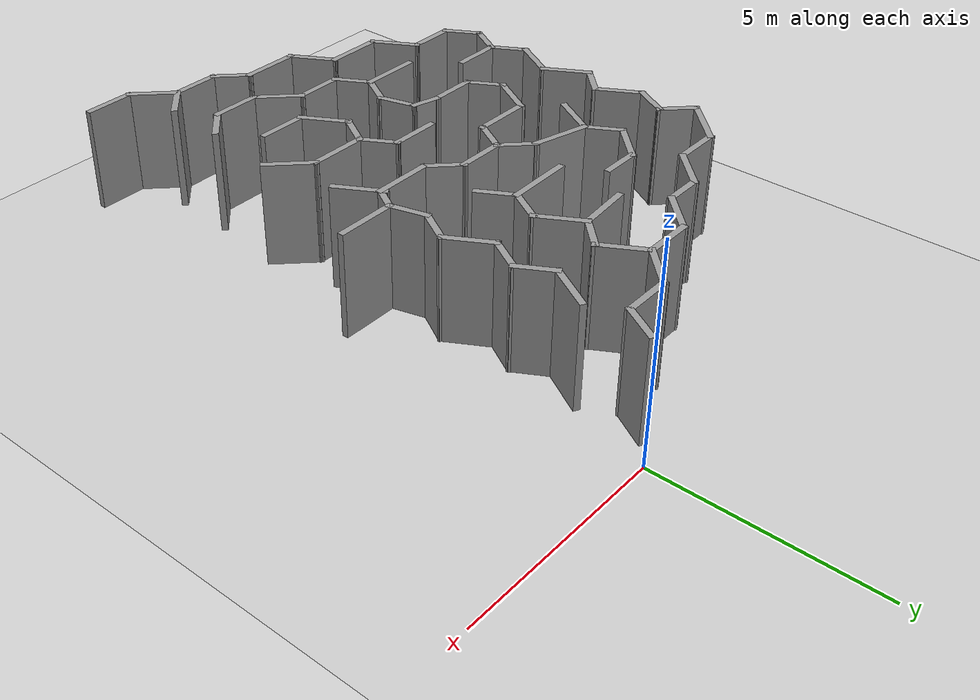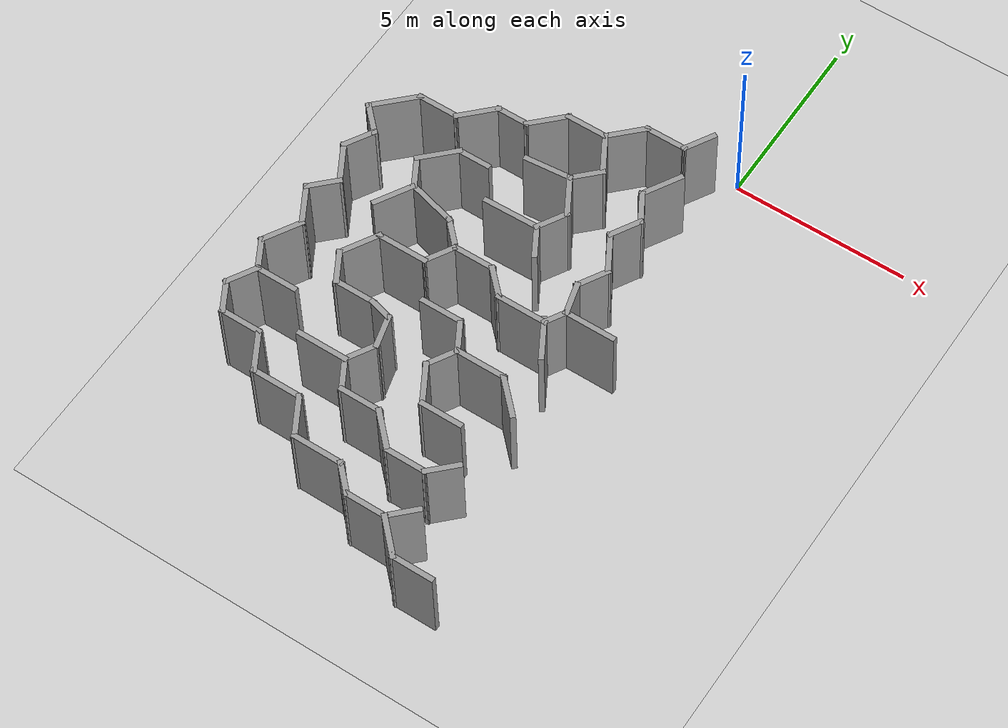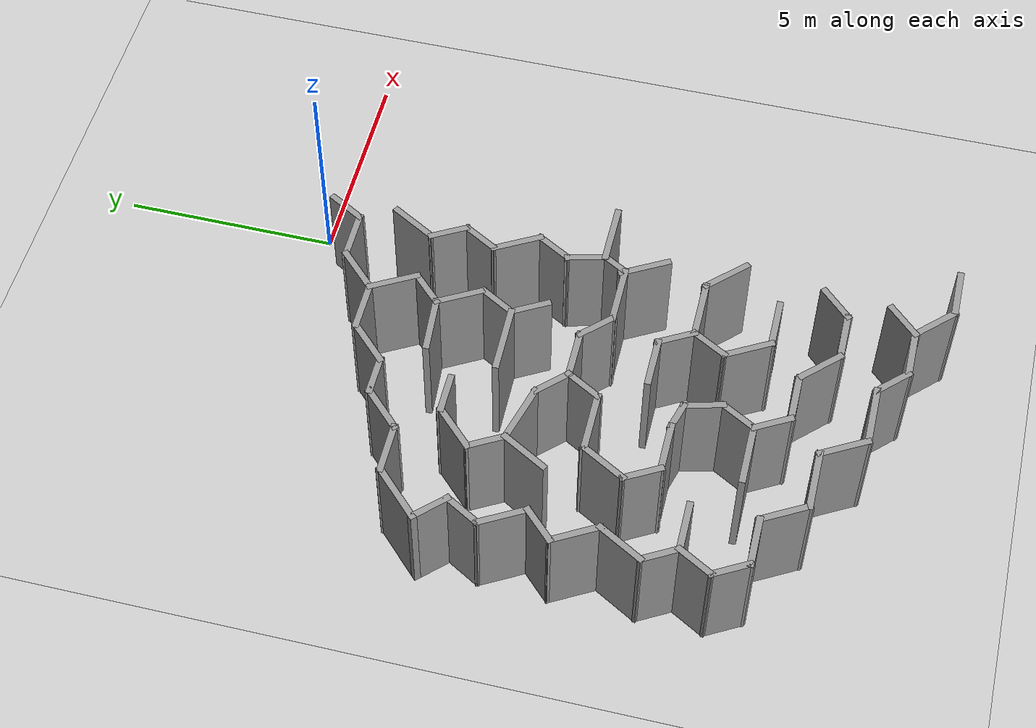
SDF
<sdf version="1.7">
 <world name="default">
  <model name="ground_plane">
   <static>1</static>
   <link name="link">
    <collision name="collision">
     <geometry><plane><normal>0 0 1</normal><size>100 100</size></plane></geometry>
     <surface><friction><ode><mu>100</mu><mu2>50</mu2></ode></friction></surface>
    </collision>
    <visual name="visual">
     <cast_shadows>0</cast_shadows>
     <geometry><plane><normal>0 0 1</normal><size>100 100</size></plane></geometry>
     <material>
      <script><uri>file://media/materials/scripts/gazebo.material</uri><name>Gazebo/Grey</name></script>
     </material>
    </visual>
   </link>
  </model>
  <model name="Maze">
   <pose>0.084887 -7.59379 0 0 -0 0</pose>
   <link name="Wall_1">
    <collision name="Wall_1_Collision">
     <geometry><box><size>1 0.15 2.5</size></box></geometry>
     <pose>0 0 1.25 0 -0 0</pose>
    </collision>
    <visual name="Wall_1_Visual">
     <pose>0 0 1.25 0 -0 0</pose>
     <geometry><box><size>1 0.15 2.5</size></box></geometry>
     <material>
      <script><uri>file://media/materials/scripts/gazebo.material</uri><name>Gazebo/Grey</name></script>
      <ambient>1 1 1 1</ambient>
     </material>
     <meta><layer>0</layer></meta>
    </visual>
    <pose>-0.837603 6.79011 0 0 -0 -2.0944</pose>
   </link>
   <link name="Wall_10">
    <collision name="Wall_10_Collision">
     <geometry><box><size>1 0.15 2.5</size></box></geometry>
     <pose>0 0 1.25 0 -0 0</pose>
    </collision>
    <visual name="Wall_10_Visual">
     <pose>0 0 1.25 0 -0 0</pose>
     <geometry><box><size>1 0.15 2.5</size></box></geometry>
     <material>
      <script><uri>file://media/materials/scripts/gazebo.material</uri><name>Gazebo/Grey</name></script>
      <ambient>1 1 1 1</ambient>
     </material>
     <meta><layer>0</layer></meta>
    </visual>
    <pose>-8.18763 2.83349 0 0 -0 -0.785398</pose>
   </link>
   <link name="Wall_100">
    <collision name="Wall_100_Collision">
     <geometry><box><size>0.75 0.15 2.5</size></box></geometry>
     <pose>0 0 1.25 0 -0 0</pose>
    </collision>
    <visual name="Wall_100_Visual">
     <pose>0 0 1.25 0 -0 0</pose>
     <geometry><box><size>0.75 0.15 2.5</size></box></geometry>
     <material>
      <script><uri>file://media/materials/scripts/gazebo.material</uri><name>Gazebo/Grey</name></script>
      <ambient>1 1 1 1</ambient>
     </material>
     <meta><layer>0</layer></meta>
    </visual>
    <pose>-4.7111 -1.71873 0 0 -0 -0.261799</pose>
   </link>
   <link name="Wall_101">
    <collision name="Wall_101_Collision">
     <geometry><box><size>1 0.15 2.5</size></box></geometry>
     <pose>0 0 1.25 0 -0 0</pose>
    </collision>
    <visual name="Wall_101_Visual">
     <pose>0 0 1.25 0 -0 0</pose>
     <geometry><box><size>1 0.15 2.5</size></box></geometry>
     <material>
      <script><uri>file://media/materials/scripts/gazebo.material</uri><name>Gazebo/Grey</name></script>
      <ambient>1 1 1 1</ambient>
     </material>
     <meta><layer>0</layer></meta>
    </visual>
    <pose>-4.31133 -2.20689 0 0 -0 -1.309</pose>
   </link>
   <link name="Wall_102">
    <collision name="Wall_102_Collision">
     <geometry><box><size>1 0.15 2.5</size></box></geometry>
     <pose>0 0 1.25 0 -0 0</pose>
    </collision>
    <visual name="Wall_102_Visual">
     <pose>0 0 1.25 0 -0 0</pose>
     <geometry><box><size>1 0.15 2.5</size></box></geometry>
     <material>
      <script><uri>file://media/materials/scripts/gazebo.material</uri><name>Gazebo/Grey</name></script>
      <ambient>1 1 1 1</ambient>
     </material>
     <meta><layer>0</layer></meta>
    </visual>
    <pose>-4.41383 -2.98547 0 0 -0 -2.0944</pose>
   </link>
   <link name="Wall_103">
    <collision name="Wall_103_Collision">
     <geometry><box><size>1.5 0.15 2.5</size></box></geometry>
     <pose>0 0 1.25 0 -0 0</pose>
    </collision>
    <visual name="Wall_103_Visual">
     <pose>0 0 1.25 0 -0 0</pose>
     <geometry><box><size>1.5 0.15 2.5</size></box></geometry>
     <material>
      <script><uri>file://media/materials/scripts/gazebo.material</uri><name>Gazebo/Grey</name></script>
      <ambient>1 1 1 1</ambient>
     </material>
     <meta><layer>0</layer></meta>
    </visual>
    <pose>-5.30133 -3.35353 0 0 -0 3.14159</pose>
   </link>
   <link name="Wall_105">
    <collision name="Wall_105_Collision">
     <geometry><box><size>1 0.15 2.5</size></box></geometry>
     <pose>0 0 1.25 0 -0 0</pose>
    </collision>
    <visual name="Wall_105_Visual">
     <pose>0 0 1.25 0 -0 0</pose>
     <geometry><box><size>1 0.15 2.5</size></box></geometry>
     <material>
      <script><uri>file://media/materials/scripts/gazebo.material</uri><name>Gazebo/Grey</name></script>
      <ambient>1 1 1 1</ambient>
     </material>
     <meta><layer>0</layer></meta>
    </visual>
    <pose>-4.41383 -3.72159 0 0 -0 -1.0472</pose>
   </link>
   <link name="Wall_106">
    <collision name="Wall_106_Collision">
     <geometry><box><size>1.25 0.15 2.5</size></box></geometry>
     <pose>0 0 1.25 0 -0 0</pose>
    </collision>
    <visual name="Wall_106_Visual">
     <pose>0 0 1.25 0 -0 0</pose>
     <geometry><box><size>1.25 0.15 2.5</size></box></geometry>
     <material>
      <script><uri>file://media/materials/scripts/gazebo.material</uri><name>Gazebo/Grey</name></script>
      <ambient>1 1 1 1</ambient>
     </material>
     <meta><layer>0</layer></meta>
    </visual>
    <pose>-3.65133 -4.08965 0 0 -0 0</pose>
   </link>
   <link name="Wall_107">
    <collision name="Wall_107_Collision">
     <geometry><box><size>1.25 0.15 2.5</size></box></geometry>
     <pose>0 0 1.25 0 -0 0</pose>
    </collision>
    <visual name="Wall_107_Visual">
     <pose>0 0 1.25 0 -0 0</pose>
     <geometry><box><size>1.25 0.15 2.5</size></box></geometry>
     <material>
      <script><uri>file://media/materials/scripts/gazebo.material</uri><name>Gazebo/Grey</name></script>
      <ambient>1 1 1 1</ambient>
     </material>
     <meta><layer>0</layer></meta>
    </visual>
    <pose>-2.71242 -4.47856 0 0 -0 -0.785398</pose>
   </link>
   <link name="Wall_108">
    <collision name="Wall_108_Collision">
     <geometry><box><size>1.25 0.15 2.5</size></box></geometry>
     <pose>0 0 1.25 0 -0 0</pose>
    </collision>
    <visual name="Wall_108_Visual">
     <pose>0 0 1.25 0 -0 0</pose>
     <geometry><box><size>1.25 0.15 2.5</size></box></geometry>
     <material>
      <script><uri>file://media/materials/scripts/gazebo.material</uri><name>Gazebo/Grey</name></script>
      <ambient>1 1 1 1</ambient>
     </material>
     <meta><layer>0</layer></meta>
    </visual>
    <pose>-1.77351 -4.86747 0 0 -0 0</pose>
   </link>
   <link name="Wall_109">
    <collision name="Wall_109_Collision">
     <geometry><box><size>1 0.15 2.5</size></box></geometry>
     <pose>0 0 1.25 0 -0 0</pose>
    </collision>
    <visual name="Wall_109_Visual">
     <pose>0 0 1.25 0 -0 0</pose>
     <geometry><box><size>1 0.15 2.5</size></box></geometry>
     <material>
      <script><uri>file://media/materials/scripts/gazebo.material</uri><name>Gazebo/Grey</name></script>
      <ambient>1 1 1 1</ambient>
     </material>
     <meta><layer>0</layer></meta>
    </visual>
    <pose>-0.92299 -4.56695 0 0 -0 0.785398</pose>
   </link>
   <link name="Wall_11">
    <collision name="Wall_11_Collision">
     <geometry><box><size>1 0.15 2.5</size></box></geometry>
     <pose>0 0 1.25 0 -0 0</pose>
    </collision>
    <visual name="Wall_11_Visual">
     <pose>0 0 1.25 0 -0 0</pose>
     <geometry><box><size>1 0.15 2.5</size></box></geometry>
     <material>
      <script><uri>file://media/materials/scripts/gazebo.material</uri><name>Gazebo/Grey</name></script>
      <ambient>1 1 1 1</ambient>
     </material>
     <meta><layer>0</layer></meta>
    </visual>
    <pose>-8.09961 2.1649 0 0 -0 -2.0944</pose>
   </link>
   <link name="Wall_12">
    <collision name="Wall_12_Collision">
     <geometry><box><size>1.25 0.15 2.5</size></box></geometry>
     <pose>0 0 1.25 0 -0 0</pose>
    </collision>
    <visual name="Wall_12_Visual">
     <pose>0 0 1.25 0 -0 0</pose>
     <geometry><box><size>1.25 0.15 2.5</size></box></geometry>
     <material>
      <script><uri>file://media/materials/scripts/gazebo.material</uri><name>Gazebo/Grey</name></script>
      <ambient>1 1 1 1</ambient>
     </material>
     <meta><layer>0</layer></meta>
    </visual>
    <pose>-8.03711 1.32053 0 0 -0 -1.0472</pose>
   </link>
   <link name="Wall_13">
    <collision name="Wall_13_Collision">
     <geometry><box><size>1 0.15 2.5</size></box></geometry>
     <pose>0 0 1.25 0 -0 0</pose>
    </collision>
    <visual name="Wall_13_Visual">
     <pose>0 0 1.25 0 -0 0</pose>
     <geometry><box><size>1 0.15 2.5</size></box></geometry>
     <material>
      <script><uri>file://media/materials/scripts/gazebo.material</uri><name>Gazebo/Grey</name></script>
      <ambient>1 1 1 1</ambient>
     </material>
     <meta><layer>0</layer></meta>
    </visual>
    <pose>-8.06263 0.543695 0 0 -0 -2.35619</pose>
   </link>
   <link name="Wall_14">
    <collision name="Wall_14_Collision">
     <geometry><box><size>1.25 0.15 2.5</size></box></geometry>
     <pose>0 0 1.25 0 -0 0</pose>
    </collision>
    <visual name="Wall_14_Visual">
     <pose>0 0 1.25 0 -0 0</pose>
     <geometry><box><size>1.25 0.15 2.5</size></box></geometry>
     <material>
      <script><uri>file://media/materials/scripts/gazebo.material</uri><name>Gazebo/Grey</name></script>
      <ambient>1 1 1 1</ambient>
     </material>
     <meta><layer>0</layer></meta>
    </visual>
    <pose>-8.08815 -0.233139 0 0 -0 -1.0472</pose>
   </link>
   <link name="Wall_15">
    <collision name="Wall_15_Collision">
     <geometry><box><size>1.25 0.15 2.5</size></box></geometry>
     <pose>0 0 1.25 0 -0 0</pose>
    </collision>
    <visual name="Wall_15_Visual">
     <pose>0 0 1.25 0 -0 0</pose>
     <geometry><box><size>1.25 0.15 2.5</size></box></geometry>
     <material>
      <script><uri>file://media/materials/scripts/gazebo.material</uri><name>Gazebo/Grey</name></script>
      <ambient>1 1 1 1</ambient>
     </material>
     <meta><layer>0</layer></meta>
    </visual>
    <pose>-8.08815 -1.18577 0 0 -0 -2.0944</pose>
   </link>
   <link name="Wall_150">
    <collision name="Wall_150_Collision">
     <geometry><box><size>1.25 0.15 2.5</size></box></geometry>
     <pose>0 0 1.25 0 -0 0</pose>
    </collision>
    <visual name="Wall_150_Visual">
     <pose>0 0 1.25 0 -0 0</pose>
     <geometry><box><size>1.25 0.15 2.5</size></box></geometry>
     <material>
      <script><uri>file://media/materials/scripts/gazebo.material</uri><name>Gazebo/Grey</name></script>
      <ambient>1 1 1 1</ambient>
     </material>
     <meta><layer>0</layer></meta>
    </visual>
    <pose>-0.725983 -2.0513 0 0 -0 2.35619</pose>
   </link>
   <link name="Wall_151">
    <collision name="Wall_151_Collision">
     <geometry><box><size>1.5 0.15 2.5</size></box></geometry>
     <pose>0 0 1.25 0 -0 0</pose>
    </collision>
    <visual name="Wall_151_Visual">
     <pose>0 0 1.25 0 -0 0</pose>
     <geometry><box><size>1.5 0.15 2.5</size></box></geometry>
     <material>
      <script><uri>file://media/materials/scripts/gazebo.material</uri><name>Gazebo/Grey</name></script>
      <ambient>1 1 1 1</ambient>
     </material>
     <meta><layer>0</layer></meta>
    </visual>
    <pose>-1.78989 -1.66239 0 0 -0 3.14159</pose>
   </link>
   <link name="Wall_152">
    <collision name="Wall_152_Collision">
     <geometry><box><size>1 0.15 2.5</size></box></geometry>
     <pose>0 0 1.25 0 -0 0</pose>
    </collision>
    <visual name="Wall_152_Visual">
     <pose>0 0 1.25 0 -0 0</pose>
     <geometry><box><size>1 0.15 2.5</size></box></geometry>
     <material>
      <script><uri>file://media/materials/scripts/gazebo.material</uri><name>Gazebo/Grey</name></script>
      <ambient>1 1 1 1</ambient>
     </material>
     <meta><layer>0</layer></meta>
    </visual>
    <pose>-2.67739 -1.29433 0 0 -0 2.0944</pose>
   </link>
   <link name="Wall_153">
    <collision name="Wall_153_Collision">
     <geometry><box><size>1.25 0.15 2.5</size></box></geometry>
     <pose>0 0 1.25 0 -0 0</pose>
    </collision>
    <visual name="Wall_153_Visual">
     <pose>0 0 1.25 0 -0 0</pose>
     <geometry><box><size>1.25 0.15 2.5</size></box></geometry>
     <material>
      <script><uri>file://media/materials/scripts/gazebo.material</uri><name>Gazebo/Grey</name></script>
      <ambient>1 1 1 1</ambient>
     </material>
     <meta><layer>0</layer></meta>
    </visual>
    <pose>-3.43989 -0.926265 0 0 -0 3.14159</pose>
   </link>
   <link name="Wall_155">
    <collision name="Wall_155_Collision">
     <geometry><box><size>1 0.15 2.5</size></box></geometry>
     <pose>0 0 1.25 0 -0 0</pose>
    </collision>
    <visual name="Wall_155_Visual">
     <pose>0 0 1.25 0 -0 0</pose>
     <geometry><box><size>1 0.15 2.5</size></box></geometry>
     <material>
      <script><uri>file://media/materials/scripts/gazebo.material</uri><name>Gazebo/Grey</name></script>
      <ambient>1 1 1 1</ambient>
     </material>
     <meta><layer>0</layer></meta>
    </visual>
    <pose>-2.67739 -2.03045 0 0 -0 -2.0944</pose>
   </link>
   <link name="Wall_156">
    <collision name="Wall_156_Collision">
     <geometry><box><size>1.25 0.15 2.5</size></box></geometry>
     <pose>0 0 1.25 0 -0 0</pose>
    </collision>
    <visual name="Wall_156_Visual">
     <pose>0 0 1.25 0 -0 0</pose>
     <geometry><box><size>1.25 0.15 2.5</size></box></geometry>
     <material>
      <script><uri>file://media/materials/scripts/gazebo.material</uri><name>Gazebo/Grey</name></script>
      <ambient>1 1 1 1</ambient>
     </material>
     <meta><layer>0</layer></meta>
    </visual>
    <pose>-2.61489 -2.87482 0 0 -0 -1.0472</pose>
   </link>
   <link name="Wall_157">
    <collision name="Wall_157_Collision">
     <geometry><box><size>1.25 0.15 2.5</size></box></geometry>
     <pose>0 0 1.25 0 -0 0</pose>
    </collision>
    <visual name="Wall_157_Visual">
     <pose>0 0 1.25 0 -0 0</pose>
     <geometry><box><size>1.25 0.15 2.5</size></box></geometry>
     <material>
      <script><uri>file://media/materials/scripts/gazebo.material</uri><name>Gazebo/Grey</name></script>
      <ambient>1 1 1 1</ambient>
     </material>
     <meta><layer>0</layer></meta>
    </visual>
    <pose>-1.78989 -3.35114 0 0 -0 0</pose>
   </link>
   <link name="Wall_16">
    <collision name="Wall_16_Collision">
     <geometry><box><size>1 0.15 2.5</size></box></geometry>
     <pose>0 0 1.25 0 -0 0</pose>
    </collision>
    <visual name="Wall_16_Visual">
     <pose>0 0 1.25 0 -0 0</pose>
     <geometry><box><size>1 0.15 2.5</size></box></geometry>
     <material>
      <script><uri>file://media/materials/scripts/gazebo.material</uri><name>Gazebo/Grey</name></script>
      <ambient>1 1 1 1</ambient>
     </material>
     <meta><layer>0</layer></meta>
    </visual>
    <pose>-8.15065 -2.03014 0 0 -0 -1.0472</pose>
   </link>
   <link name="Wall_17">
    <collision name="Wall_17_Collision">
     <geometry><box><size>1.25 0.15 2.5</size></box></geometry>
     <pose>0 0 1.25 0 -0 0</pose>
    </collision>
    <visual name="Wall_17_Visual">
     <pose>0 0 1.25 0 -0 0</pose>
     <geometry><box><size>1.25 0.15 2.5</size></box></geometry>
     <material>
      <script><uri>file://media/materials/scripts/gazebo.material</uri><name>Gazebo/Grey</name></script>
      <ambient>1 1 1 1</ambient>
     </material>
     <meta><layer>0</layer></meta>
    </visual>
    <pose>-7.38815 -2.3982 0 0 -0 0</pose>
   </link>
   <link name="Wall_172">
    <collision name="Wall_172_Collision">
     <geometry><box><size>1.25 0.15 2.5</size></box></geometry>
     <pose>0 0 1.25 0 -0 0</pose>
    </collision>
    <visual name="Wall_172_Visual">
     <pose>0 0 1.25 0 -0 0</pose>
     <geometry><box><size>1.25 0.15 2.5</size></box></geometry>
     <material>
      <script><uri>file://media/materials/scripts/gazebo.material</uri><name>Gazebo/Grey</name></script>
      <ambient>1 1 1 1</ambient>
     </material>
     <meta><layer>0</layer></meta>
    </visual>
    <pose>-0.93069 -0.221655 0 0 -0 -1.0472</pose>
   </link>
   <link name="Wall_174">
    <collision name="Wall_174_Collision">
     <geometry><box><size>1.5 0.15 2.5</size></box></geometry>
     <pose>0 0 1.25 0 -0 0</pose>
    </collision>
    <visual name="Wall_174_Visual">
     <pose>0 0 1.25 0 -0 0</pose>
     <geometry><box><size>1.5 0.15 2.5</size></box></geometry>
     <material>
      <script><uri>file://media/materials/scripts/gazebo.material</uri><name>Gazebo/Grey</name></script>
      <ambient>1 1 1 1</ambient>
     </material>
     <meta><layer>0</layer></meta>
    </visual>
    <pose>-0.174839 0.702363 0 0 -0 0</pose>
   </link>
   <link name="Wall_19">
    <collision name="Wall_19_Collision">
     <geometry><box><size>1 0.15 2.5</size></box></geometry>
     <pose>0 0 1.25 0 -0 0</pose>
    </collision>
    <visual name="Wall_19_Visual">
     <pose>0 0 1.25 0 -0 0</pose>
     <geometry><box><size>1 0.15 2.5</size></box></geometry>
     <material>
      <script><uri>file://media/materials/scripts/gazebo.material</uri><name>Gazebo/Grey</name></script>
      <ambient>1 1 1 1</ambient>
     </material>
     <meta><layer>0</layer></meta>
    </visual>
    <pose>-8.15065 -2.76626 0 0 -0 -2.0944</pose>
   </link>
   <link name="Wall_2">
    <collision name="Wall_2_Collision">
     <geometry><box><size>1.25 0.15 2.5</size></box></geometry>
     <pose>0 0 1.25 0 -0 0</pose>
    </collision>
    <visual name="Wall_2_Visual">
     <pose>0 0 1.25 0 -0 0</pose>
     <geometry><box><size>1.25 0.15 2.5</size></box></geometry>
     <material>
      <script><uri>file://media/materials/scripts/gazebo.material</uri><name>Gazebo/Grey</name></script>
      <ambient>1 1 1 1</ambient>
     </material>
     <meta><layer>0</layer></meta>
    </visual>
    <pose>-1.6001 6.42205 0 0 -0 3.14159</pose>
   </link>
   <link name="Wall_20">
    <collision name="Wall_20_Collision">
     <geometry><box><size>1 0.15 2.5</size></box></geometry>
     <pose>0 0 1.25 0 -0 0</pose>
    </collision>
    <visual name="Wall_20_Visual">
     <pose>0 0 1.25 0 -0 0</pose>
     <geometry><box><size>1 0.15 2.5</size></box></geometry>
     <material>
      <script><uri>file://media/materials/scripts/gazebo.material</uri><name>Gazebo/Grey</name></script>
      <ambient>1 1 1 1</ambient>
     </material>
     <meta><layer>0</layer></meta>
    </visual>
    <pose>-8.15065 -3.50238 0 0 -0 -1.0472</pose>
   </link>
   <link name="Wall_21">
    <collision name="Wall_21_Collision">
     <geometry><box><size>1.25 0.15 2.5</size></box></geometry>
     <pose>0 0 1.25 0 -0 0</pose>
    </collision>
    <visual name="Wall_21_Visual">
     <pose>0 0 1.25 0 -0 0</pose>
     <geometry><box><size>1.25 0.15 2.5</size></box></geometry>
     <material>
      <script><uri>file://media/materials/scripts/gazebo.material</uri><name>Gazebo/Grey</name></script>
      <ambient>1 1 1 1</ambient>
     </material>
     <meta><layer>0</layer></meta>
    </visual>
    <pose>-7.38815 -3.87045 0 0 -0 0</pose>
   </link>
   <link name="Wall_22">
    <collision name="Wall_22_Collision">
     <geometry><box><size>1.25 0.15 2.5</size></box></geometry>
     <pose>0 0 1.25 0 -0 0</pose>
    </collision>
    <visual name="Wall_22_Visual">
     <pose>0 0 1.25 0 -0 0</pose>
     <geometry><box><size>1.25 0.15 2.5</size></box></geometry>
     <material>
      <script><uri>file://media/materials/scripts/gazebo.material</uri><name>Gazebo/Grey</name></script>
      <ambient>1 1 1 1</ambient>
     </material>
     <meta><layer>0</layer></meta>
    </visual>
    <pose>-6.56315 -4.34676 0 0 -0 -1.0472</pose>
   </link>
   <link name="Wall_23">
    <collision name="Wall_23_Collision">
     <geometry><box><size>1.5 0.15 2.5</size></box></geometry>
     <pose>0 0 1.25 0 -0 0</pose>
    </collision>
    <visual name="Wall_23_Visual">
     <pose>0 0 1.25 0 -0 0</pose>
     <geometry><box><size>1.5 0.15 2.5</size></box></geometry>
     <material>
      <script><uri>file://media/materials/scripts/gazebo.material</uri><name>Gazebo/Grey</name></script>
      <ambient>1 1 1 1</ambient>
     </material>
     <meta><layer>0</layer></meta>
    </visual>
    <pose>-5.61315 -4.82307 0 0 -0 0</pose>
   </link>
   <link name="Wall_24">
    <collision name="Wall_24_Collision">
     <geometry><box><size>1.25 0.15 2.5</size></box></geometry>
     <pose>0 0 1.25 0 -0 0</pose>
    </collision>
    <visual name="Wall_24_Visual">
     <pose>0 0 1.25 0 -0 0</pose>
     <geometry><box><size>1.25 0.15 2.5</size></box></geometry>
     <material>
      <script><uri>file://media/materials/scripts/gazebo.material</uri><name>Gazebo/Grey</name></script>
      <ambient>1 1 1 1</ambient>
     </material>
     <meta><layer>0</layer></meta>
    </visual>
    <pose>-4.66315 -5.29939 0 0 -0 -1.0472</pose>
   </link>
   <link name="Wall_25">
    <collision name="Wall_25_Collision">
     <geometry><box><size>1.5 0.15 2.5</size></box></geometry>
     <pose>0 0 1.25 0 -0 0</pose>
    </collision>
    <visual name="Wall_25_Visual">
     <pose>0 0 1.25 0 -0 0</pose>
     <geometry><box><size>1.5 0.15 2.5</size></box></geometry>
     <material>
      <script><uri>file://media/materials/scripts/gazebo.material</uri><name>Gazebo/Grey</name></script>
      <ambient>1 1 1 1</ambient>
     </material>
     <meta><layer>0</layer></meta>
    </visual>
    <pose>-3.71315 -5.7757 0 0 -0 0</pose>
   </link>
   <link name="Wall_26">
    <collision name="Wall_26_Collision">
     <geometry><box><size>1 0.15 2.5</size></box></geometry>
     <pose>0 0 1.25 0 -0 0</pose>
    </collision>
    <visual name="Wall_26_Visual">
     <pose>0 0 1.25 0 -0 0</pose>
     <geometry><box><size>1 0.15 2.5</size></box></geometry>
     <material>
      <script><uri>file://media/materials/scripts/gazebo.material</uri><name>Gazebo/Grey</name></script>
      <ambient>1 1 1 1</ambient>
     </material>
     <meta><layer>0</layer></meta>
    </visual>
    <pose>-2.73763 -6.07622 0 0 -0 -0.785398</pose>
   </link>
   <link name="Wall_27">
    <collision name="Wall_27_Collision">
     <geometry><box><size>1.25 0.15 2.5</size></box></geometry>
     <pose>0 0 1.25 0 -0 0</pose>
    </collision>
    <visual name="Wall_27_Visual">
     <pose>0 0 1.25 0 -0 0</pose>
     <geometry><box><size>1.25 0.15 2.5</size></box></geometry>
     <material>
      <script><uri>file://media/materials/scripts/gazebo.material</uri><name>Gazebo/Grey</name></script>
      <ambient>1 1 1 1</ambient>
     </material>
     <meta><layer>0</layer></meta>
    </visual>
    <pose>-1.88711 -6.37674 0 0 -0 0</pose>
   </link>
   <link name="Wall_28">
    <collision name="Wall_28_Collision">
     <geometry><box><size>1 0.15 2.5</size></box></geometry>
     <pose>0 0 1.25 0 -0 0</pose>
    </collision>
    <visual name="Wall_28_Visual">
     <pose>0 0 1.25 0 -0 0</pose>
     <geometry><box><size>1 0.15 2.5</size></box></geometry>
     <material>
      <script><uri>file://media/materials/scripts/gazebo.material</uri><name>Gazebo/Grey</name></script>
      <ambient>1 1 1 1</ambient>
     </material>
     <meta><layer>0</layer></meta>
    </visual>
    <pose>-1.03659 -6.07622 0 0 -0 0.785398</pose>
   </link>
   <link name="Wall_3">
    <collision name="Wall_3_Collision">
     <geometry><box><size>1.25 0.15 2.5</size></box></geometry>
     <pose>0 0 1.25 0 -0 0</pose>
    </collision>
    <visual name="Wall_3_Visual">
     <pose>0 0 1.25 0 -0 0</pose>
     <geometry><box><size>1.25 0.15 2.5</size></box></geometry>
     <material>
      <script><uri>file://media/materials/scripts/gazebo.material</uri><name>Gazebo/Grey</name></script>
      <ambient>1 1 1 1</ambient>
     </material>
     <meta><layer>0</layer></meta>
    </visual>
    <pose>-2.53901 6.03314 0 0 -0 -2.35619</pose>
   </link>
   <link name="Wall_30">
    <collision name="Wall_30_Collision">
     <geometry><box><size>1.25 0.15 2.5</size></box></geometry>
     <pose>0 0 1.25 0 -0 0</pose>
    </collision>
    <visual name="Wall_30_Visual">
     <pose>0 0 1.25 0 -0 0</pose>
     <geometry><box><size>1.25 0.15 2.5</size></box></geometry>
     <material>
      <script><uri>file://media/materials/scripts/gazebo.material</uri><name>Gazebo/Grey</name></script>
      <ambient>1 1 1 1</ambient>
     </material>
     <meta><layer>0</layer></meta>
    </visual>
    <pose>-0.9482 -6.76565 0 0 -0 -0.785398</pose>
   </link>
   <link name="Wall_31">
    <collision name="Wall_31_Collision">
     <geometry><box><size>1.25 0.15 2.5</size></box></geometry>
     <pose>0 0 1.25 0 -0 0</pose>
    </collision>
    <visual name="Wall_31_Visual">
     <pose>0 0 1.25 0 -0 0</pose>
     <geometry><box><size>1.25 0.15 2.5</size></box></geometry>
     <material>
      <script><uri>file://media/materials/scripts/gazebo.material</uri><name>Gazebo/Grey</name></script>
      <ambient>1 1 1 1</ambient>
     </material>
     <meta><layer>0</layer></meta>
    </visual>
    <pose>-0.009291 -7.15456 0 0 -0 0</pose>
   </link>
   <link name="Wall_4">
    <collision name="Wall_4_Collision">
     <geometry><box><size>1.25 0.15 2.5</size></box></geometry>
     <pose>0 0 1.25 0 -0 0</pose>
    </collision>
    <visual name="Wall_4_Visual">
     <pose>0 0 1.25 0 -0 0</pose>
     <geometry><box><size>1.25 0.15 2.5</size></box></geometry>
     <material>
      <script><uri>file://media/materials/scripts/gazebo.material</uri><name>Gazebo/Grey</name></script>
      <ambient>1 1 1 1</ambient>
     </material>
     <meta><layer>0</layer></meta>
    </visual>
    <pose>-3.47792 5.64424 0 0 -0 3.14159</pose>
   </link>
   <link name="Wall_5">
    <collision name="Wall_5_Collision">
     <geometry><box><size>1.25 0.15 2.5</size></box></geometry>
     <pose>0 0 1.25 0 -0 0</pose>
    </collision>
    <visual name="Wall_5_Visual">
     <pose>0 0 1.25 0 -0 0</pose>
     <geometry><box><size>1.25 0.15 2.5</size></box></geometry>
     <material>
      <script><uri>file://media/materials/scripts/gazebo.material</uri><name>Gazebo/Grey</name></script>
      <ambient>1 1 1 1</ambient>
     </material>
     <meta><layer>0</layer></meta>
    </visual>
    <pose>-4.41683 5.25533 0 0 -0 -2.35619</pose>
   </link>
   <link name="Wall_6">
    <collision name="Wall_6_Collision">
     <geometry><box><size>1 0.15 2.5</size></box></geometry>
     <pose>0 0 1.25 0 -0 0</pose>
    </collision>
    <visual name="Wall_6_Visual">
     <pose>0 0 1.25 0 -0 0</pose>
     <geometry><box><size>1 0.15 2.5</size></box></geometry>
     <material>
      <script><uri>file://media/materials/scripts/gazebo.material</uri><name>Gazebo/Grey</name></script>
      <ambient>1 1 1 1</ambient>
     </material>
     <meta><layer>0</layer></meta>
    </visual>
    <pose>-5.23074 4.86642 0 0 -0 3.14159</pose>
   </link>
   <link name="Wall_61">
    <collision name="Wall_61_Collision">
     <geometry><box><size>1.25 0.15 2.5</size></box></geometry>
     <pose>0 0 1.25 0 -0 0</pose>
    </collision>
    <visual name="Wall_61_Visual">
     <pose>0 0 1.25 0 -0 0</pose>
     <geometry><box><size>1.25 0.15 2.5</size></box></geometry>
     <material>
      <script><uri>file://media/materials/scripts/gazebo.material</uri><name>Gazebo/Grey</name></script>
      <ambient>1 1 1 1</ambient>
     </material>
     <meta><layer>0</layer></meta>
    </visual>
    <pose>-2.65292 5.16792 0 0 -0 -1.0472</pose>
   </link>
   <link name="Wall_62">
    <collision name="Wall_62_Collision">
     <geometry><box><size>1 0.15 2.5</size></box></geometry>
     <pose>0 0 1.25 0 -0 0</pose>
    </collision>
    <visual name="Wall_62_Visual">
     <pose>0 0 1.25 0 -0 0</pose>
     <geometry><box><size>1 0.15 2.5</size></box></geometry>
     <material>
      <script><uri>file://media/materials/scripts/gazebo.material</uri><name>Gazebo/Grey</name></script>
      <ambient>1 1 1 1</ambient>
     </material>
     <meta><layer>0</layer></meta>
    </visual>
    <pose>-2.67844 4.39109 0 0 -0 -2.35619</pose>
   </link>
   <link name="Wall_63">
    <collision name="Wall_63_Collision">
     <geometry><box><size>1.25 0.15 2.5</size></box></geometry>
     <pose>0 0 1.25 0 -0 0</pose>
    </collision>
    <visual name="Wall_63_Visual">
     <pose>0 0 1.25 0 -0 0</pose>
     <geometry><box><size>1.25 0.15 2.5</size></box></geometry>
     <material>
      <script><uri>file://media/materials/scripts/gazebo.material</uri><name>Gazebo/Grey</name></script>
      <ambient>1 1 1 1</ambient>
     </material>
     <meta><layer>0</layer></meta>
    </visual>
    <pose>-2.70396 3.61425 0 0 -0 -1.0472</pose>
   </link>
   <link name="Wall_64">
    <collision name="Wall_64_Collision">
     <geometry><box><size>1 0.15 2.5</size></box></geometry>
     <pose>0 0 1.25 0 -0 0</pose>
    </collision>
    <visual name="Wall_64_Visual">
     <pose>0 0 1.25 0 -0 0</pose>
     <geometry><box><size>1 0.15 2.5</size></box></geometry>
     <material>
      <script><uri>file://media/materials/scripts/gazebo.material</uri><name>Gazebo/Grey</name></script>
      <ambient>1 1 1 1</ambient>
     </material>
     <meta><layer>0</layer></meta>
    </visual>
    <pose>-2.64146 2.76988 0 0 -0 -2.0944</pose>
   </link>
   <link name="Wall_65">
    <collision name="Wall_65_Collision">
     <geometry><box><size>1 0.15 2.5</size></box></geometry>
     <pose>0 0 1.25 0 -0 0</pose>
    </collision>
    <visual name="Wall_65_Visual">
     <pose>0 0 1.25 0 -0 0</pose>
     <geometry><box><size>1 0.15 2.5</size></box></geometry>
     <material>
      <script><uri>file://media/materials/scripts/gazebo.material</uri><name>Gazebo/Grey</name></script>
      <ambient>1 1 1 1</ambient>
     </material>
     <meta><layer>0</layer></meta>
    </visual>
    <pose>-2.64146 2.03376 0 0 -0 -1.0472</pose>
   </link>
   <link name="Wall_67">
    <collision name="Wall_67_Collision">
     <geometry><box><size>1.6474 0.15 2.5</size></box></geometry>
     <pose>0 0 1.25 0 -0 0</pose>
    </collision>
    <visual name="Wall_67_Visual">
     <pose>0 0 1.25 0 -0 0</pose>
     <geometry><box><size>1.6474 0.15 2.5</size></box></geometry>
     <material>
      <script><uri>file://media/materials/scripts/gazebo.material</uri><name>Gazebo/Grey</name></script>
      <ambient>1 1 1 1</ambient>
     </material>
     <meta><layer>0</layer></meta>
    </visual>
    <pose>-3.60253 2.388 0 0 -0 0.018462</pose>
   </link>
   <link name="Wall_69">
    <collision name="Wall_69_Collision">
     <geometry><box><size>1.38872 0.15 2.5</size></box></geometry>
     <pose>0 0 1.25 0 -0 0</pose>
    </collision>
    <visual name="Wall_69_Visual">
     <pose>0 0 1.25 0 -0 0</pose>
     <geometry><box><size>1.38872 0.15 2.5</size></box></geometry>
     <material>
      <script><uri>file://media/materials/scripts/gazebo.material</uri><name>Gazebo/Grey</name></script>
      <ambient>1 1 1 1</ambient>
     </material>
     <meta><layer>0</layer></meta>
    </visual>
    <pose>-3.59603 4.03737 0 0 -0 0.085995</pose>
   </link>
   <link name="Wall_7">
    <collision name="Wall_7_Collision">
     <geometry><box><size>1.25 0.15 2.5</size></box></geometry>
     <pose>0 0 1.25 0 -0 0</pose>
    </collision>
    <visual name="Wall_7_Visual">
     <pose>0 0 1.25 0 -0 0</pose>
     <geometry><box><size>1.25 0.15 2.5</size></box></geometry>
     <material>
      <script><uri>file://media/materials/scripts/gazebo.material</uri><name>Gazebo/Grey</name></script>
      <ambient>1 1 1 1</ambient>
     </material>
     <meta><layer>0</layer></meta>
    </visual>
    <pose>-6.04465 4.47751 0 0 -0 -2.35619</pose>
   </link>
   <link name="Wall_71">
    <collision name="Wall_71_Collision">
     <geometry><box><size>1 0.15 2.5</size></box></geometry>
     <pose>0 0 1.25 0 -0 0</pose>
    </collision>
    <visual name="Wall_71_Visual">
     <pose>0 0 1.25 0 -0 0</pose>
     <geometry><box><size>1 0.15 2.5</size></box></geometry>
     <material>
      <script><uri>file://media/materials/scripts/gazebo.material</uri><name>Gazebo/Grey</name></script>
      <ambient>1 1 1 1</ambient>
     </material>
     <meta><layer>0</layer></meta>
    </visual>
    <pose>-5.3281 3.24817 0 0 -0 3.14159</pose>
   </link>
   <link name="Wall_72">
    <collision name="Wall_72_Collision">
     <geometry><box><size>1.25 0.15 2.5</size></box></geometry>
     <pose>0 0 1.25 0 -0 0</pose>
    </collision>
    <visual name="Wall_72_Visual">
     <pose>0 0 1.25 0 -0 0</pose>
     <geometry><box><size>1.25 0.15 2.5</size></box></geometry>
     <material>
      <script><uri>file://media/materials/scripts/gazebo.material</uri><name>Gazebo/Grey</name></script>
      <ambient>1 1 1 1</ambient>
     </material>
     <meta><layer>0</layer></meta>
    </visual>
    <pose>-6.14201 2.85927 0 0 -0 -2.35619</pose>
   </link>
   <link name="Wall_73">
    <collision name="Wall_73_Collision">
     <geometry><box><size>1 0.15 2.5</size></box></geometry>
     <pose>0 0 1.25 0 -0 0</pose>
    </collision>
    <visual name="Wall_73_Visual">
     <pose>0 0 1.25 0 -0 0</pose>
     <geometry><box><size>1 0.15 2.5</size></box></geometry>
     <material>
      <script><uri>file://media/materials/scripts/gazebo.material</uri><name>Gazebo/Grey</name></script>
      <ambient>1 1 1 1</ambient>
     </material>
     <meta><layer>0</layer></meta>
    </visual>
    <pose>-6.31842 2.1023 0 0 -0 -1.0472</pose>
   </link>
   <link name="Wall_74">
    <collision name="Wall_74_Collision">
     <geometry><box><size>1.25 0.15 2.5</size></box></geometry>
     <pose>0 0 1.25 0 -0 0</pose>
    </collision>
    <visual name="Wall_74_Visual">
     <pose>0 0 1.25 0 -0 0</pose>
     <geometry><box><size>1.25 0.15 2.5</size></box></geometry>
     <material>
      <script><uri>file://media/materials/scripts/gazebo.material</uri><name>Gazebo/Grey</name></script>
      <ambient>1 1 1 1</ambient>
     </material>
     <meta><layer>0</layer></meta>
    </visual>
    <pose>-6.38092 1.25792 0 0 -0 -2.0944</pose>
   </link>
   <link name="Wall_76">
    <collision name="Wall_76_Collision">
     <geometry><box><size>1.5 0.15 2.5</size></box></geometry>
     <pose>0 0 1.25 0 -0 0</pose>
    </collision>
    <visual name="Wall_76_Visual">
     <pose>0 0 1.25 0 -0 0</pose>
     <geometry><box><size>1.5 0.15 2.5</size></box></geometry>
     <material>
      <script><uri>file://media/materials/scripts/gazebo.material</uri><name>Gazebo/Grey</name></script>
      <ambient>1 1 1 1</ambient>
     </material>
     <meta><layer>0</layer></meta>
    </visual>
    <pose>-5.45392 1.55953 0 0 -0 -0.261799</pose>
   </link>
   <link name="Wall_77">
    <collision name="Wall_77_Collision">
     <geometry><box><size>1 0.15 2.5</size></box></geometry>
     <pose>0 0 1.25 0 -0 0</pose>
    </collision>
    <visual name="Wall_77_Visual">
     <pose>0 0 1.25 0 -0 0</pose>
     <geometry><box><size>1 0.15 2.5</size></box></geometry>
     <material>
      <script><uri>file://media/materials/scripts/gazebo.material</uri><name>Gazebo/Grey</name></script>
      <ambient>1 1 1 1</ambient>
     </material>
     <meta><layer>0</layer></meta>
    </visual>
    <pose>-4.5014 1.08431 0 0 -0 -0.785398</pose>
   </link>
   <link name="Wall_78">
    <collision name="Wall_78_Collision">
     <geometry><box><size>1.25 0.15 2.5</size></box></geometry>
     <pose>0 0 1.25 0 -0 0</pose>
    </collision>
    <visual name="Wall_78_Visual">
     <pose>0 0 1.25 0 -0 0</pose>
     <geometry><box><size>1.25 0.15 2.5</size></box></geometry>
     <material>
      <script><uri>file://media/materials/scripts/gazebo.material</uri><name>Gazebo/Grey</name></script>
      <ambient>1 1 1 1</ambient>
     </material>
     <meta><layer>0</layer></meta>
    </visual>
    <pose>-3.65088 0.783789 0 0 -0 0</pose>
   </link>
   <link name="Wall_79">
    <collision name="Wall_79_Collision">
     <geometry><box><size>1 0.15 2.5</size></box></geometry>
     <pose>0 0 1.25 0 -0 0</pose>
    </collision>
    <visual name="Wall_79_Visual">
     <pose>0 0 1.25 0 -0 0</pose>
     <geometry><box><size>1 0.15 2.5</size></box></geometry>
     <material>
      <script><uri>file://media/materials/scripts/gazebo.material</uri><name>Gazebo/Grey</name></script>
      <ambient>1 1 1 1</ambient>
     </material>
     <meta><layer>0</layer></meta>
    </visual>
    <pose>-2.80036 0.483268 0 0 -0 -0.785398</pose>
   </link>
   <link name="Wall_8">
    <collision name="Wall_8_Collision">
     <geometry><box><size>1.25 0.15 2.5</size></box></geometry>
     <pose>0 0 1.25 0 -0 0</pose>
    </collision>
    <visual name="Wall_8_Visual">
     <pose>0 0 1.25 0 -0 0</pose>
     <geometry><box><size>1.25 0.15 2.5</size></box></geometry>
     <material>
      <script><uri>file://media/materials/scripts/gazebo.material</uri><name>Gazebo/Grey</name></script>
      <ambient>1 1 1 1</ambient>
     </material>
     <meta><layer>0</layer></meta>
    </visual>
    <pose>-6.98355 4.0886 0 0 -0 3.14159</pose>
   </link>
   <link name="Wall_80">
    <collision name="Wall_80_Collision">
     <geometry><box><size>1.5 0.15 2.5</size></box></geometry>
     <pose>0 0 1.25 0 -0 0</pose>
    </collision>
    <visual name="Wall_80_Visual">
     <pose>0 0 1.25 0 -0 0</pose>
     <geometry><box><size>1.5 0.15 2.5</size></box></geometry>
     <material>
      <script><uri>file://media/materials/scripts/gazebo.material</uri><name>Gazebo/Grey</name></script>
      <ambient>1 1 1 1</ambient>
     </material>
     <meta><layer>0</layer></meta>
    </visual>
    <pose>-1.82484 0.182748 0 0 -0 0</pose>
   </link>
   <link name="Wall_81">
    <collision name="Wall_81_Collision">
     <geometry><box><size>0.75 0.15 2.5</size></box></geometry>
     <pose>0 0 1.25 0 -0 0</pose>
    </collision>
    <visual name="Wall_81_Visual">
     <pose>0 0 1.25 0 -0 0</pose>
     <geometry><box><size>0.75 0.15 2.5</size></box></geometry>
     <material>
      <script><uri>file://media/materials/scripts/gazebo.material</uri><name>Gazebo/Grey</name></script>
      <ambient>1 1 1 1</ambient>
     </material>
     <meta><layer>0</layer></meta>
    </visual>
    <pose>-0.999839 0.442555 0 0 -0 1.0472</pose>
   </link>
   <link name="Wall_82">
    <collision name="Wall_82_Collision">
     <geometry><box><size>1 0.15 2.5</size></box></geometry>
     <pose>0 0 1.25 0 -0 0</pose>
    </collision>
    <visual name="Wall_82_Visual">
     <pose>0 0 1.25 0 -0 0</pose>
     <geometry><box><size>1 0.15 2.5</size></box></geometry>
     <material>
      <script><uri>file://media/materials/scripts/gazebo.material</uri><name>Gazebo/Grey</name></script>
      <ambient>1 1 1 1</ambient>
     </material>
     <meta><layer>0</layer></meta>
    </visual>
    <pose>-0.959837 1.11288 0 0 -0 1.8326</pose>
   </link>
   <link name="Wall_83">
    <collision name="Wall_83_Collision">
     <geometry><box><size>1 0.15 2.5</size></box></geometry>
     <pose>0 0 1.25 0 -0 0</pose>
    </collision>
    <visual name="Wall_83_Visual">
     <pose>0 0 1.25 0 -0 0</pose>
     <geometry><box><size>1 0.15 2.5</size></box></geometry>
     <material>
      <script><uri>file://media/materials/scripts/gazebo.material</uri><name>Gazebo/Grey</name></script>
      <ambient>1 1 1 1</ambient>
     </material>
     <meta><layer>0</layer></meta>
    </visual>
    <pose>-0.857335 1.89146 0 0 -0 1.0472</pose>
   </link>
   <link name="Wall_84">
    <collision name="Wall_84_Collision">
     <geometry><box><size>1.25 0.15 2.5</size></box></geometry>
     <pose>0 0 1.25 0 -0 0</pose>
    </collision>
    <visual name="Wall_84_Visual">
     <pose>0 0 1.25 0 -0 0</pose>
     <geometry><box><size>1.25 0.15 2.5</size></box></geometry>
     <material>
      <script><uri>file://media/materials/scripts/gazebo.material</uri><name>Gazebo/Grey</name></script>
      <ambient>1 1 1 1</ambient>
     </material>
     <meta><layer>0</layer></meta>
    </visual>
    <pose>-0.919835 2.73584 0 0 -0 2.0944</pose>
   </link>
   <link name="Wall_85">
    <collision name="Wall_85_Collision">
     <geometry><box><size>1 0.15 2.5</size></box></geometry>
     <pose>0 0 1.25 0 -0 0</pose>
    </collision>
    <visual name="Wall_85_Visual">
     <pose>0 0 1.25 0 -0 0</pose>
     <geometry><box><size>1 0.15 2.5</size></box></geometry>
     <material>
      <script><uri>file://media/materials/scripts/gazebo.material</uri><name>Gazebo/Grey</name></script>
      <ambient>1 1 1 1</ambient>
     </material>
     <meta><layer>0</layer></meta>
    </visual>
    <pose>-0.982335 3.58021 0 0 -0 1.0472</pose>
   </link>
   <link name="Wall_86">
    <collision name="Wall_86_Collision">
     <geometry><box><size>1 0.15 2.5</size></box></geometry>
     <pose>0 0 1.25 0 -0 0</pose>
    </collision>
    <visual name="Wall_86_Visual">
     <pose>0 0 1.25 0 -0 0</pose>
     <geometry><box><size>1 0.15 2.5</size></box></geometry>
     <material>
      <script><uri>file://media/materials/scripts/gazebo.material</uri><name>Gazebo/Grey</name></script>
      <ambient>1 1 1 1</ambient>
     </material>
     <meta><layer>0</layer></meta>
    </visual>
    <pose>-0.982335 4.31633 0 0 -0 2.0944</pose>
   </link>
   <link name="Wall_87">
    <collision name="Wall_87_Collision">
     <geometry><box><size>1.25 0.15 2.5</size></box></geometry>
     <pose>0 0 1.25 0 -0 0</pose>
    </collision>
    <visual name="Wall_87_Visual">
     <pose>0 0 1.25 0 -0 0</pose>
     <geometry><box><size>1.25 0.15 2.5</size></box></geometry>
     <material>
      <script><uri>file://media/materials/scripts/gazebo.material</uri><name>Gazebo/Grey</name></script>
      <ambient>1 1 1 1</ambient>
     </material>
     <meta><layer>0</layer></meta>
    </visual>
    <pose>-0.919835 5.16071 0 0 -0 1.0472</pose>
   </link>
   <link name="Wall_9">
    <collision name="Wall_9_Collision">
     <geometry><box><size>1.5 0.15 2.5</size></box></geometry>
     <pose>0 0 1.25 0 -0 0</pose>
    </collision>
    <visual name="Wall_9_Visual">
     <pose>0 0 1.25 0 -0 0</pose>
     <geometry><box><size>1.5 0.15 2.5</size></box></geometry>
     <material>
      <script><uri>file://media/materials/scripts/gazebo.material</uri><name>Gazebo/Grey</name></script>
      <ambient>1 1 1 1</ambient>
     </material>
     <meta><layer>0</layer></meta>
    </visual>
    <pose>-8.01085 3.6113 0 0 -0 -2.35619</pose>
   </link>
   <link name="Wall_95">
    <collision name="Wall_95_Collision">
     <geometry><box><size>1 0.15 2.5</size></box></geometry>
     <pose>0 0 1.25 0 -0 0</pose>
    </collision>
    <visual name="Wall_95_Visual">
     <pose>0 0 1.25 0 -0 0</pose>
     <geometry><box><size>1 0.15 2.5</size></box></geometry>
     <material>
      <script><uri>file://media/materials/scripts/gazebo.material</uri><name>Gazebo/Grey</name></script>
      <ambient>1 1 1 1</ambient>
     </material>
     <meta><layer>0</layer></meta>
    </visual>
    <pose>-4.41338 0.415728 0 0 -0 -2.0944</pose>
   </link>
   <link name="Wall_96">
    <collision name="Wall_96_Collision">
     <geometry><box><size>1.5 0.15 2.5</size></box></geometry>
     <pose>0 0 1.25 0 -0 0</pose>
    </collision>
    <visual name="Wall_96_Visual">
     <pose>0 0 1.25 0 -0 0</pose>
     <geometry><box><size>1.5 0.15 2.5</size></box></geometry>
     <material>
      <script><uri>file://media/materials/scripts/gazebo.material</uri><name>Gazebo/Grey</name></script>
      <ambient>1 1 1 1</ambient>
     </material>
     <meta><layer>0</layer></meta>
    </visual>
    <pose>-5.30088 0.047667 0 0 -0 3.14159</pose>
   </link>
   <link name="Wall_97">
    <collision name="Wall_97_Collision">
     <geometry><box><size>1.25 0.15 2.5</size></box></geometry>
     <pose>0 0 1.25 0 -0 0</pose>
    </collision>
    <visual name="Wall_97_Visual">
     <pose>0 0 1.25 0 -0 0</pose>
     <geometry><box><size>1.25 0.15 2.5</size></box></geometry>
     <material>
      <script><uri>file://media/materials/scripts/gazebo.material</uri><name>Gazebo/Grey</name></script>
      <ambient>1 1 1 1</ambient>
     </material>
     <meta><layer>0</layer></meta>
    </visual>
    <pose>-6.25088 -0.428647 0 0 -0 -2.0944</pose>
   </link>
   <link name="Wall_98">
    <collision name="Wall_98_Collision">
     <geometry><box><size>1 0.15 2.5</size></box></geometry>
     <pose>0 0 1.25 0 -0 0</pose>
    </collision>
    <visual name="Wall_98_Visual">
     <pose>0 0 1.25 0 -0 0</pose>
     <geometry><box><size>1 0.15 2.5</size></box></geometry>
     <material>
      <script><uri>file://media/materials/scripts/gazebo.material</uri><name>Gazebo/Grey</name></script>
      <ambient>1 1 1 1</ambient>
     </material>
     <meta><layer>0</layer></meta>
    </visual>
    <pose>-6.31338 -1.27302 0 0 -0 -1.0472</pose>
   </link>
   <link name="Wall_99">
    <collision name="Wall_99_Collision">
     <geometry><box><size>1.25 0.15 2.5</size></box></geometry>
     <pose>0 0 1.25 0 -0 0</pose>
    </collision>
    <visual name="Wall_99_Visual">
     <pose>0 0 1.25 0 -0 0</pose>
     <geometry><box><size>1.25 0.15 2.5</size></box></geometry>
     <material>
      <script><uri>file://media/materials/scripts/gazebo.material</uri><name>Gazebo/Grey</name></script>
      <ambient>1 1 1 1</ambient>
     </material>
     <meta><layer>0</layer></meta>
    </visual>
    <pose>-5.55088 -1.64108 0 0 -0 0</pose>
   </link>
   <static>1</static>
  </model>
 </world>
</sdf>
